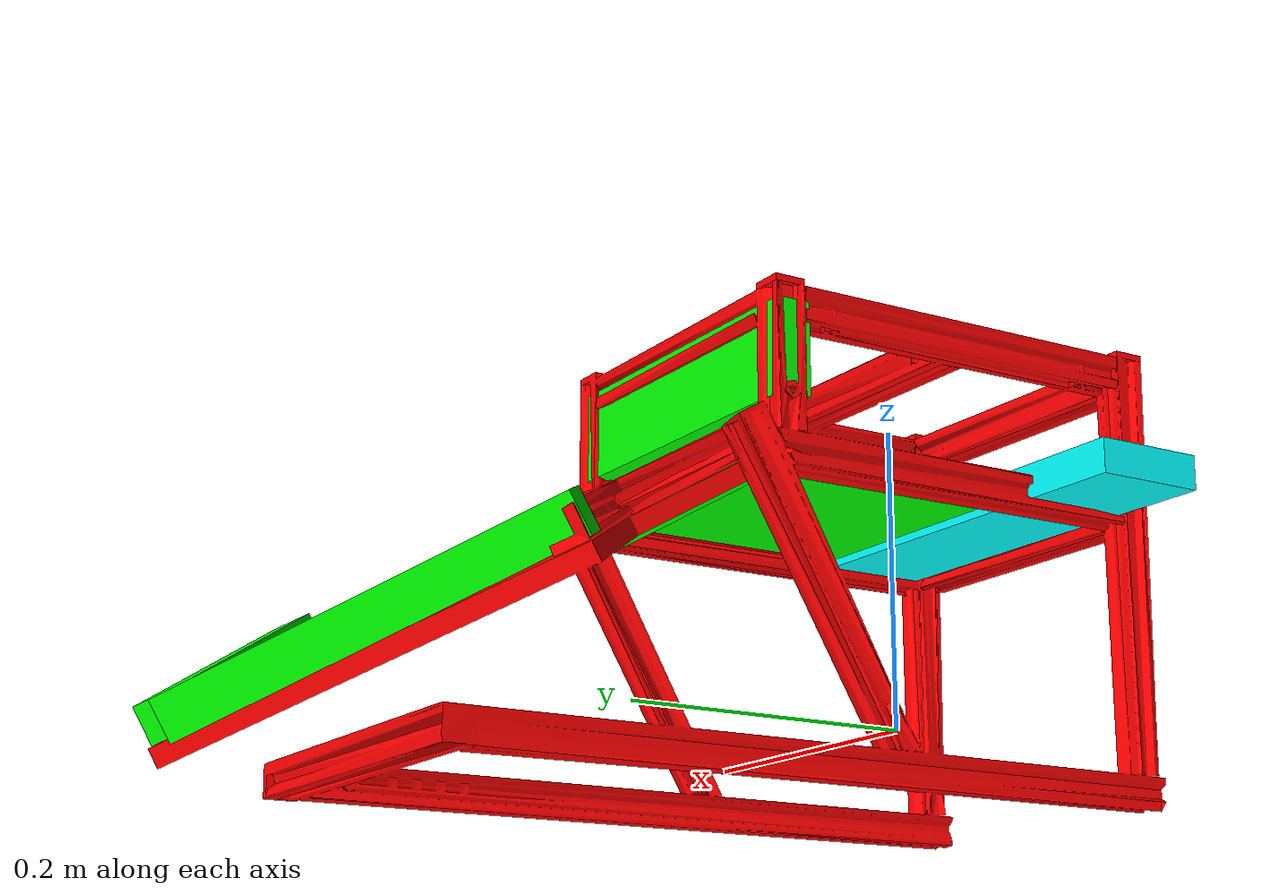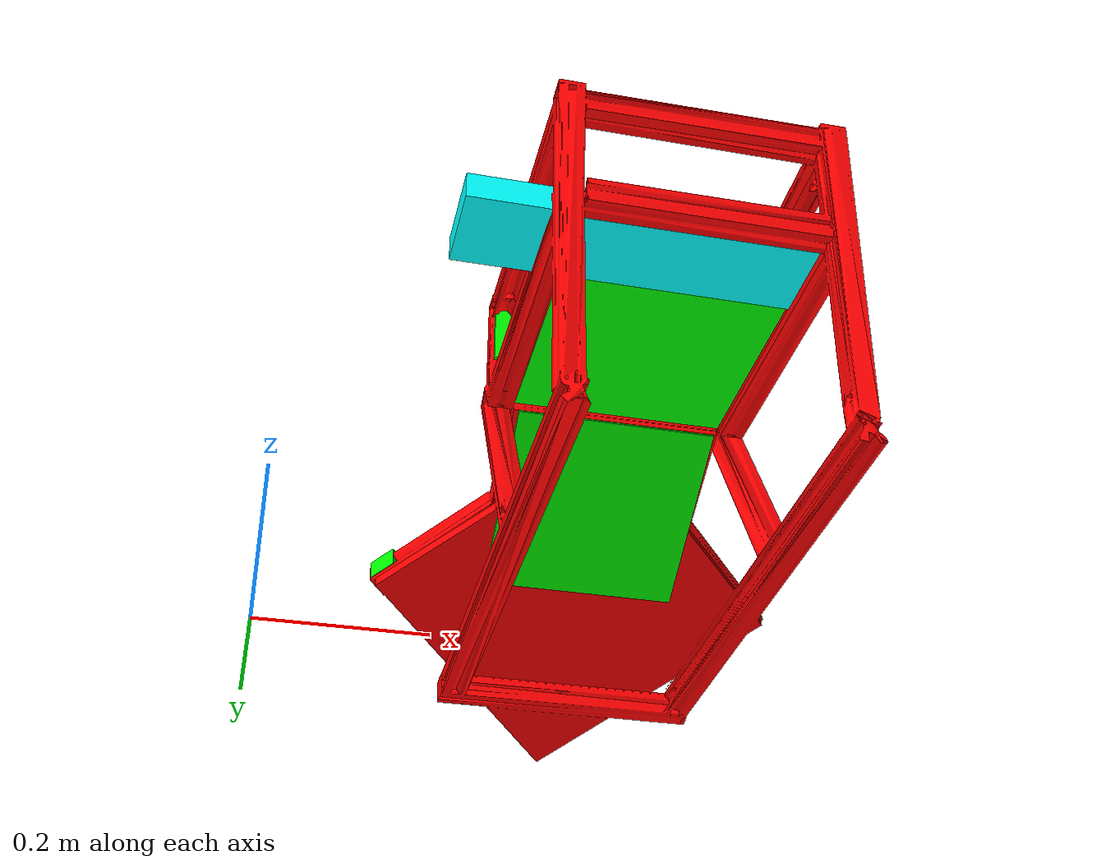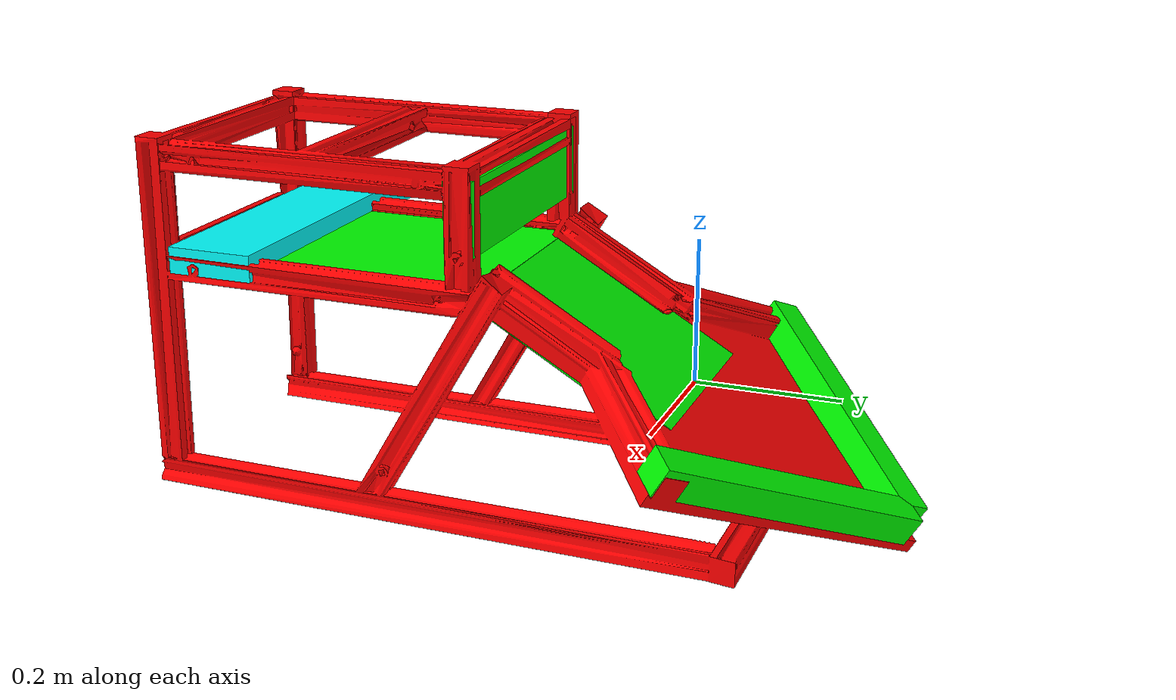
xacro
<?xml version="1.0" ?>
<robot name="pickuppoint"
    xmlns:xacro="http://ros.org/wiki/xacro">
    <xacro:include filename="$(find abb_resources)/urdf/common_materials.xacro" />
    <link name='world'/>
    <gazebo reference="pickuppoint">
        <material>Gazebo/Yellow</material>
    </gazebo>
    <link name='pickuppoint'>
        <inertial>
            <mass value="100" />
            <inertia ixx="1.0" ixy="0.0" ixz="0.0" iyy="1.0" iyz="0.0" izz="1.0" />
        </inertial>
        <visual>
            <origin rpy="0 0 0" xyz="0.00 0.395 0" />
            <geometry>
                <mesh filename="package://pickuppoint/stl/ultimateLowResPickupPoint2.0.stl" />
            </geometry>
            <material name="red">
                <color rgba="1 0 0 1.0"/>
            </material>
        </visual>
        <collision>
            <origin rpy="0 0 0" xyz="0.0 0.395 0" />
            <geometry>
                <mesh filename="package://pickuppoint/stl/ultimateLowResPickupPoint3.0.stl" />
            </geometry>
            <material name="">
                <color rgba="1 1 0 1" />
            </material>
        </collision>
    </link>
    <link name='slider'>
        <inertial>
            <mass value="1.0"/>
            <origin rpy="0 0 -1.57" xyz="0 0 0" />
            <inertia ixx="1.0" ixy="0.0" ixz="0.0" iyy="1.0" iyz="0.0" izz="1.0" />
        </inertial>
        <visual name='visual'>
            <origin rpy="0 0 -1.57" xyz="-0.39 0.02 0.28" />
            <geometry>
                <box size="0.4 0.1 0.03"/>
            </geometry>
            <material name="Cyan">
                <color rgba="0 1.0 1.0 1.0"/>
            </material>
        </visual>
        <collision>
            <origin rpy="0 0 -1.57" xyz="-0.39 0.02 0.28" />
            <geometry>
                <box size="0.4 0.1 0.03"/>
            </geometry>
            <material name="Cyan">
                <color rgba="0 1.0 1.0 1.0"/>
            </material>
        </collision>
    </link>
    <link name='plateau'>
        <inertial>
            <mass value="1"/>
            <origin rpy="0 0 0" xyz="0 0 0" />
            <inertia ixx="0.001" ixy="0" ixz="0" iyy="0.001" iyz="0" izz="0.001" />
        </inertial>
        <visual name='visual'>
            <origin rpy="0 0 0" xyz="0 -0.2645 0.273" />
            <geometry>
                <box size="0.26 0.36 0.002"/>
            </geometry>
            <material name="Green">
                <color rgba="0 1.0 0 1.0"/>
            </material>
        </visual>
        <collision>
            <origin rpy="0 0 0" xyz="0 -0.27 0.273" />
            <geometry>
                <box size="0.26 0.36 0.002"/>
            </geometry>
            <material name="Green">
                <color rgba="0 1.0 0 1.0"/>
            </material>
        </collision>
    </link>
    <link name='slope'>
        <inertial>
            <mass value="1"/>
            <origin rpy="0 0 0" xyz="0 0 0" />
            <inertia ixx="0.001" ixy="0" ixz="0" iyy="0.001" iyz="0" izz="0.001" />
        </inertial>
        <visual name='visual'>
            <origin rpy="-0.53 0 0" xyz="0 0.014 0.204" />
            <geometry>
                <box size="0.24 0.24 0.02"/>
            </geometry>
            <material name="Green">
                <color rgba="0 1.0 0 1.0"/>
            </material>
        </visual>
        <collision>
            <origin rpy="-0.53 0 0" xyz="0 0.014 0.204" />
            <geometry>
                <box size="0.24 0.24 0.02"/>
            </geometry>
            <material name="Green">
                <color rgba="0 1.0 0 1.0"/>
            </material>
        </collision>
    </link>
    <link name='front_blocker'>
        <inertial>
            <mass value="1"/>
            <origin rpy="0 0 0" xyz="0 0 0" />
            <inertia ixx="0.001" ixy="0" ixz="0" iyy="0.001" iyz="0" izz="0.001" />
        </inertial>
        <visual>
            <origin rpy="0 0 0" xyz="0.02 -0.1 0.355" />
            <geometry>
                <box size="0.3 0.03 0.08"/>
            </geometry>
            <material name="Green">
                <color rgba="0 1.0 0 1.0"/>
            </material>
        </visual>
        <collision>
            <origin rpy="0 0 0" xyz="0.02 -0.1 0.355" />
            <geometry>
                <box size="0.3 0.03 0.08"/>
            </geometry>
            <material name="Green">
                <color rgba="0 1.0 0 1.0"/>
            </material>
        </collision>
    </link>
    <link name='right_bottom_blocker'>
        <inertial>
            <mass value="1"/>
            <origin rpy="0 0 0" xyz="0 0 0" />
            <inertia ixx="0.001" ixy="0" ixz="0" iyy="0.001" iyz="0" izz="0.001" />
        </inertial>
        <visual>
            <origin rpy="-0.39 0.38 0.70" xyz="-0.10 0.245 0.1" />
            <geometry>
                <box size="0.34 0.035 0.035"/>
            </geometry>
            <material name="Green">
                <color rgba="0 1.0 0 1.0"/>
            </material>
        </visual>
        <collision>
            <origin rpy="-0.39 0.38 0.70" xyz="-0.10 0.245 0.1" />
            <geometry>
                <box size="0.34 0.035 0.035"/>
            </geometry>
            <material name="Green">
                <color rgba="0 1.0 0 1.0"/>
            </material>
        </collision>
    </link>
    <link name='left_bottom_blocker'>
        <inertial>
            <mass value="1"/>
            <origin rpy="0 0 0" xyz="0 0 0" />
            <inertia ixx="0.001" ixy="0" ixz="0" iyy="0.001" iyz="0" izz="0.001" />
        </inertial>
        <visual>
            <origin rpy="-0.39 -0.38 -0.7" xyz="0.15 0.245 0.1" />
            <geometry>
                <box size="0.34 0.035 0.035"/>
            </geometry>
            <material name="Green">
                <color rgba="0 1.0 0 1.0"/>
            </material>
        </visual>
        <collision>
            <origin rpy="-0.39 -0.38 -0.7" xyz="0.15 0.245 0.1" />
            <geometry>
                <box size="0.34 0.035 0.035"/>
            </geometry>
            <material name="Green">
                <color rgba="0 1.0 0 1.0"/>
            </material>
        </collision>
    </link>

    <joint name="pickuppoint_JOINT_1" type="prismatic">
        <origin rpy="0 -0.00005 1.57" xyz="-0.025 0 0" />
        <parent link="pickuppoint" />
        <child link="slider" />
        <damping>0.0</damping>
        <friction>0.0</friction>
        <limit effort="0" lower="0" upper="0.23" velocity="0" />
    </joint>
    <joint name="world_pickuppoint" type="fixed">
        <origin rpy="0 0 0" xyz="0.4 0 0" />
        <parent link="world" />
        <child link="pickuppoint" />
    </joint>
    <joint name="pickuppoint_slope" type="fixed">
        <origin rpy="0 0 0" xyz="0 0 0" />
        <parent link="pickuppoint" />
        <child link="slope" />
    </joint>
    <joint name="pickuppoint_plateau" type="fixed">
        <origin rpy="0 0 0" xyz="0 0 0" />
        <parent link="pickuppoint" />
        <child link="plateau" />
    </joint>
    <joint name="pickuppoint_front_blocker" type="fixed">
        <origin rpy="0 0 0" xyz="-0.025 0 0" />
        <parent link="pickuppoint" />
        <child link="front_blocker" />
    </joint>
    <joint name="pickuppoint_right_bottom_blocker" type="fixed">
        <origin rpy="0 0 0" xyz="-0.025 0 0" />
        <parent link="pickuppoint" />
        <child link="right_bottom_blocker" />
    </joint>
    <joint name="pickuppoint_left_bottom_blocker" type="fixed">
        <origin rpy="0 0 0" xyz="-0.025 0 0" />
        <parent link="pickuppoint" />
        <child link="left_bottom_blocker" />
    </joint>
</robot>
